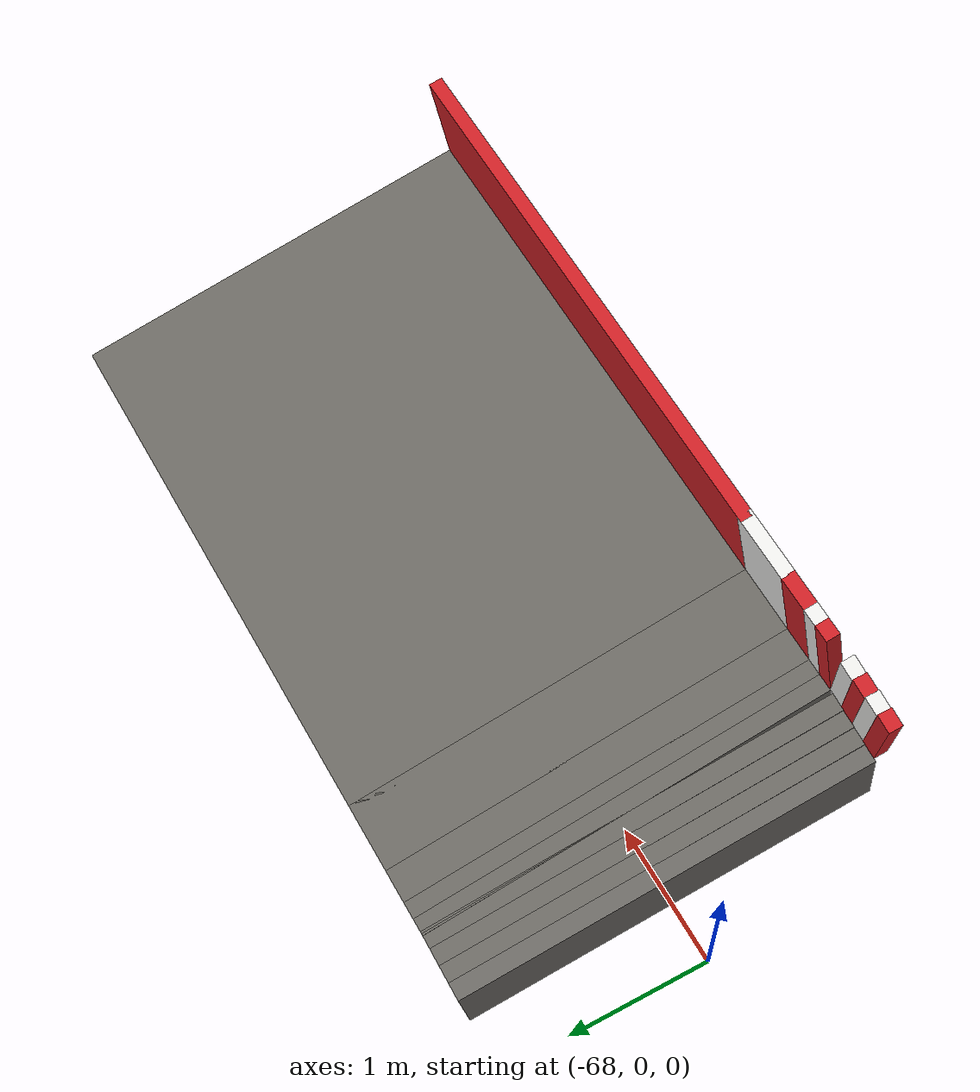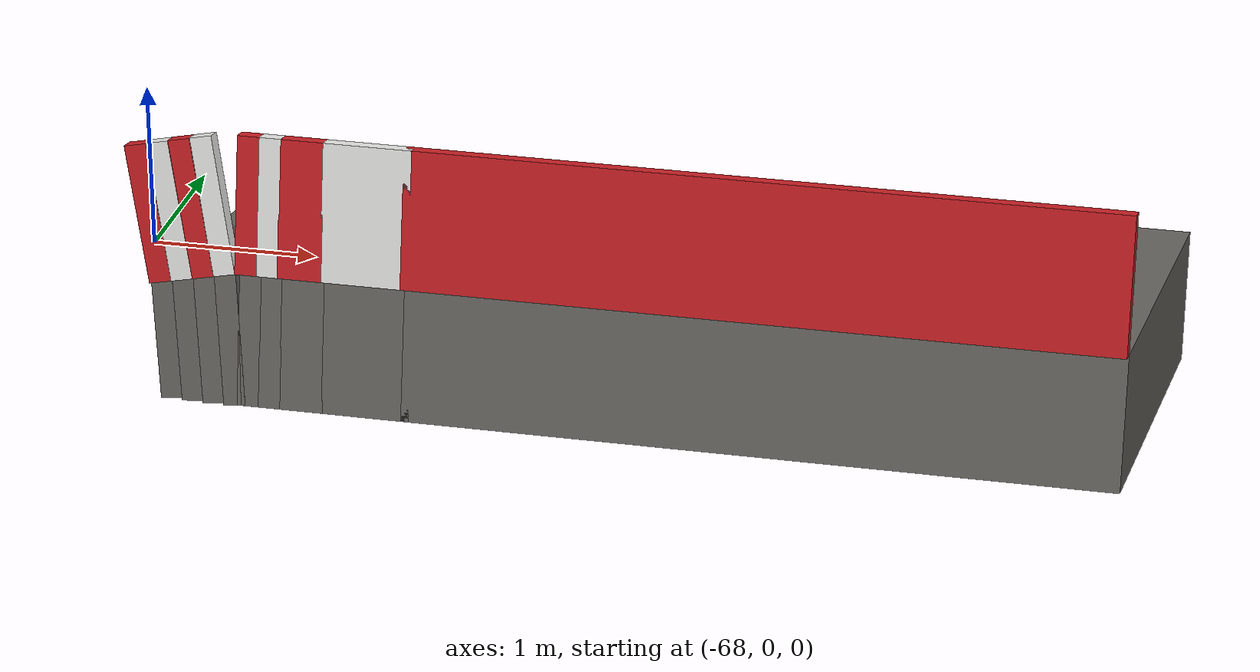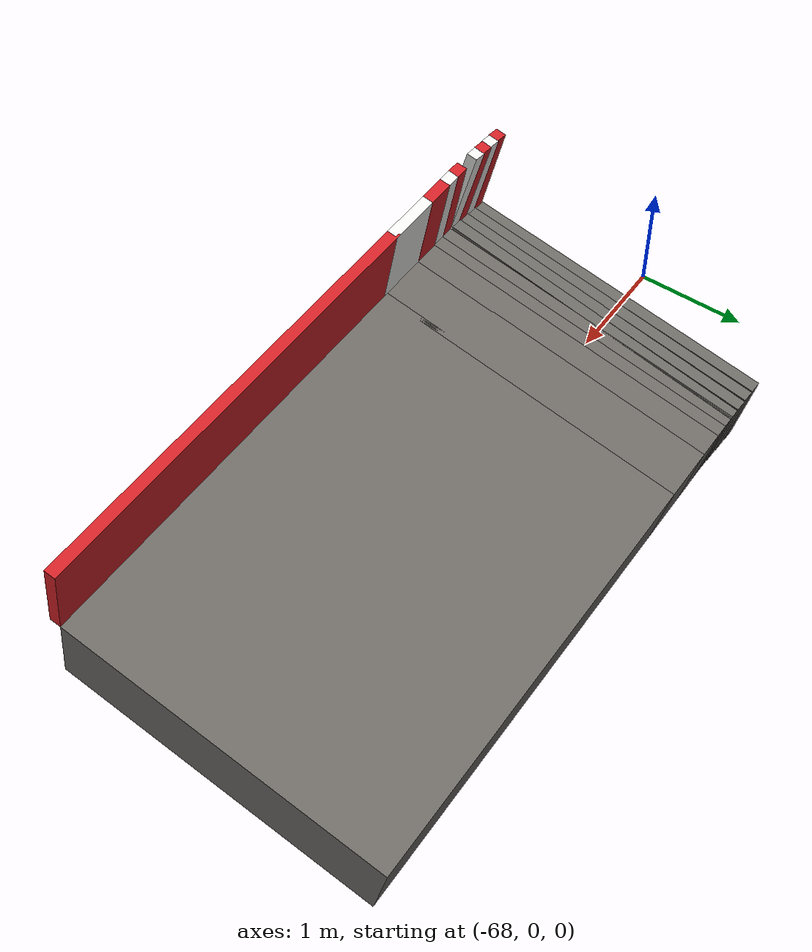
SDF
<sdf version="1.10">
 <world name="ika_parkur">
  <model name="parkur_road">
   <static>true</static>
   <link name="road_0048">
    <pose>-64 -0.077304 -0.092345 0.197396 0 3.141593</pose>
    <collision name="road_0048_col">
     <geometry><box><size>4.08 3 0.788348</size></box></geometry>
     <surface>
      <friction><ode><mu>1</mu><mu2>1</mu2></ode></friction>
      <contact><ode><kp>1000000</kp><kd>1</kd></ode></contact>
     </surface>
    </collision>
    <visual name="road_0048_vis">
     <geometry><box><size>4.08 3 0.788348</size></box></geometry>
     <material>
      <ambient>0.42 0.41 0.39 1</ambient>
      <diffuse>0.42 0.41 0.39 1</diffuse>
      <specular>0.1 0.1 0.1 1</specular>
     </material>
    </visual>
   </link>
   <link name="road_0049">
    <pose>-66.25 -0.077304 -0.092345 0.197396 0 3.141593</pose>
    <collision name="road_0049_col">
     <geometry><box><size>0.51 3 0.788348</size></box></geometry>
     <surface>
      <friction><ode><mu>1</mu><mu2>1</mu2></ode></friction>
      <contact><ode><kp>1000000</kp><kd>1</kd></ode></contact>
     </surface>
    </collision>
    <visual name="road_0049_vis">
     <geometry><box><size>0.51 3 0.788348</size></box></geometry>
     <material>
      <ambient>0.42 0.41 0.39 1</ambient>
      <diffuse>0.42 0.41 0.39 1</diffuse>
      <specular>0.1 0.1 0.1 1</specular>
     </material>
    </visual>
   </link>
   <link name="road_0050">
    <pose>-66.625 -0.077304 -0.092345 0.197396 0 3.141593</pose>
    <collision name="road_0050_col">
     <geometry><box><size>0.255 3 0.788348</size></box></geometry>
     <surface>
      <friction><ode><mu>1</mu><mu2>1</mu2></ode></friction>
      <contact><ode><kp>1000000</kp><kd>1</kd></ode></contact>
     </surface>
    </collision>
    <visual name="road_0050_vis">
     <geometry><box><size>0.255 3 0.788348</size></box></geometry>
     <material>
      <ambient>0.42 0.41 0.39 1</ambient>
      <diffuse>0.42 0.41 0.39 1</diffuse>
      <specular>0.1 0.1 0.1 1</specular>
     </material>
    </visual>
   </link>
   <link name="road_0051">
    <pose>-66.8125 -0.077304 -0.092345 0.197396 0 3.141593</pose>
    <collision name="road_0051_col">
     <geometry><box><size>0.1275 3 0.788348</size></box></geometry>
     <surface>
      <friction><ode><mu>1</mu><mu2>1</mu2></ode></friction>
      <contact><ode><kp>1000000</kp><kd>1</kd></ode></contact>
     </surface>
    </collision>
    <visual name="road_0051_vis">
     <geometry><box><size>0.1275 3 0.788348</size></box></geometry>
     <material>
      <ambient>0.42 0.41 0.39 1</ambient>
      <diffuse>0.42 0.41 0.39 1</diffuse>
      <specular>0.1 0.1 0.1 1</specular>
     </material>
    </visual>
   </link>
   <link name="road_0052">
    <pose>-66.9375 -0.077304 -0.092345 0.197396 0 3.141593</pose>
    <collision name="road_0052_col">
     <geometry><box><size>0.1275 3 0.788348</size></box></geometry>
     <surface>
      <friction><ode><mu>1</mu><mu2>1</mu2></ode></friction>
      <contact><ode><kp>1000000</kp><kd>1</kd></ode></contact>
     </surface>
    </collision>
    <visual name="road_0052_vis">
     <geometry><box><size>0.1275 3 0.788348</size></box></geometry>
     <material>
      <ambient>0.42 0.41 0.39 1</ambient>
      <diffuse>0.42 0.41 0.39 1</diffuse>
      <specular>0.1 0.1 0.1 1</specular>
     </material>
    </visual>
   </link>
   <link name="road_0053">
    <pose>-67.02478 -0.077304 -0.096629 0.197396 0.097746 3.141593</pose>
    <collision name="road_0053_col">
     <geometry><box><size>0.128112 3 0.788348</size></box></geometry>
     <surface>
      <friction><ode><mu>1</mu><mu2>1</mu2></ode></friction>
      <contact><ode><kp>1000000</kp><kd>1</kd></ode></contact>
     </surface>
    </collision>
    <visual name="road_0053_vis">
     <geometry><box><size>0.128112 3 0.788348</size></box></geometry>
     <material>
      <ambient>0.42 0.41 0.39 1</ambient>
      <diffuse>0.42 0.41 0.39 1</diffuse>
      <specular>0.1 0.1 0.1 1</specular>
     </material>
    </visual>
   </link>
   <link name="road_0054">
    <pose>-67.150879 -0.071846 -0.097671 0.189171 0.097746 3.141593</pose>
    <collision name="road_0054_col">
     <geometry><box><size>0.128112 3 0.764133</size></box></geometry>
     <surface>
      <friction><ode><mu>1</mu><mu2>1</mu2></ode></friction>
      <contact><ode><kp>1000000</kp><kd>1</kd></ode></contact>
     </surface>
    </collision>
    <visual name="road_0054_vis">
     <geometry><box><size>0.128112 3 0.764133</size></box></geometry>
     <material>
      <ambient>0.42 0.41 0.39 1</ambient>
      <diffuse>0.42 0.41 0.39 1</diffuse>
      <specular>0.1 0.1 0.1 1</specular>
     </material>
    </visual>
   </link>
   <link name="road_0055">
    <pose>-67.276987 -0.066574 -0.098632 0.180946 0.097746 3.141593</pose>
    <collision name="road_0055_col">
     <geometry><box><size>0.128112 3 0.73988</size></box></geometry>
     <surface>
      <friction><ode><mu>1</mu><mu2>1</mu2></ode></friction>
      <contact><ode><kp>1000000</kp><kd>1</kd></ode></contact>
     </surface>
    </collision>
    <visual name="road_0055_vis">
     <geometry><box><size>0.128112 3 0.73988</size></box></geometry>
     <material>
      <ambient>0.42 0.41 0.39 1</ambient>
      <diffuse>0.42 0.41 0.39 1</diffuse>
      <specular>0.1 0.1 0.1 1</specular>
     </material>
    </visual>
   </link>
   <link name="road_0056">
    <pose>-67.403102 -0.061492 -0.099515 0.172721 0.097746 3.141593</pose>
    <collision name="road_0056_col">
     <geometry><box><size>0.128112 3 0.715591</size></box></geometry>
     <surface>
      <friction><ode><mu>1</mu><mu2>1</mu2></ode></friction>
      <contact><ode><kp>1000000</kp><kd>1</kd></ode></contact>
     </surface>
    </collision>
    <visual name="road_0056_vis">
     <geometry><box><size>0.128112 3 0.715591</size></box></geometry>
     <material>
      <ambient>0.42 0.41 0.39 1</ambient>
      <diffuse>0.42 0.41 0.39 1</diffuse>
      <specular>0.1 0.1 0.1 1</specular>
     </material>
    </visual>
   </link>
  </model>
  <model name="parkur_barriers">
   <static>true</static>
   <link name="barrier_l_0048">
    <pose>-64 -1.441454 0.990386 0.197396 0 3.141593</pose>
    <collision name="barrier_l_0048_col">
     <geometry><box><size>4.08 0.1 0.8</size></box></geometry>
     <surface>
      <friction><ode><mu>0.6</mu><mu2>0.6</mu2></ode></friction>
      <contact><ode><kp>1000000</kp><kd>1</kd></ode></contact>
     </surface>
    </collision>
    <visual name="barrier_l_0048_vis">
     <geometry><box><size>4.08 0.1 0.8</size></box></geometry>
     <material>
      <ambient>0.81 0.13 0.15 1</ambient>
      <diffuse>0.81 0.13 0.15 1</diffuse>
      <specular>0.1 0.1 0.1 1</specular>
     </material>
    </visual>
   </link>
   <link name="barrier_l_0049">
    <pose>-66.25 -1.441454 0.990386 0.197396 0 3.141593</pose>
    <collision name="barrier_l_0049_col">
     <geometry><box><size>0.51 0.1 0.8</size></box></geometry>
     <surface>
      <friction><ode><mu>0.6</mu><mu2>0.6</mu2></ode></friction>
      <contact><ode><kp>1000000</kp><kd>1</kd></ode></contact>
     </surface>
    </collision>
    <visual name="barrier_l_0049_vis">
     <geometry><box><size>0.51 0.1 0.8</size></box></geometry>
     <material>
      <ambient>0.93 0.93 0.92 1</ambient>
      <diffuse>0.93 0.93 0.92 1</diffuse>
      <specular>0.1 0.1 0.1 1</specular>
     </material>
    </visual>
   </link>
   <link name="barrier_l_0050">
    <pose>-66.625 -1.441454 0.990386 0.197396 0 3.141593</pose>
    <collision name="barrier_l_0050_col">
     <geometry><box><size>0.255 0.1 0.8</size></box></geometry>
     <surface>
      <friction><ode><mu>0.6</mu><mu2>0.6</mu2></ode></friction>
      <contact><ode><kp>1000000</kp><kd>1</kd></ode></contact>
     </surface>
    </collision>
    <visual name="barrier_l_0050_vis">
     <geometry><box><size>0.255 0.1 0.8</size></box></geometry>
     <material>
      <ambient>0.81 0.13 0.15 1</ambient>
      <diffuse>0.81 0.13 0.15 1</diffuse>
      <specular>0.1 0.1 0.1 1</specular>
     </material>
    </visual>
   </link>
   <link name="barrier_l_0051">
    <pose>-66.8125 -1.441454 0.990386 0.197396 0 3.141593</pose>
    <collision name="barrier_l_0051_col">
     <geometry><box><size>0.1275 0.1 0.8</size></box></geometry>
     <surface>
      <friction><ode><mu>0.6</mu><mu2>0.6</mu2></ode></friction>
      <contact><ode><kp>1000000</kp><kd>1</kd></ode></contact>
     </surface>
    </collision>
    <visual name="barrier_l_0051_vis">
     <geometry><box><size>0.1275 0.1 0.8</size></box></geometry>
     <material>
      <ambient>0.93 0.93 0.92 1</ambient>
      <diffuse>0.93 0.93 0.92 1</diffuse>
      <specular>0.1 0.1 0.1 1</specular>
     </material>
    </visual>
   </link>
   <link name="barrier_l_0052">
    <pose>-66.9375 -1.441454 0.990386 0.197396 0 3.141593</pose>
    <collision name="barrier_l_0052_col">
     <geometry><box><size>0.1275 0.1 0.8</size></box></geometry>
     <surface>
      <friction><ode><mu>0.6</mu><mu2>0.6</mu2></ode></friction>
      <contact><ode><kp>1000000</kp><kd>1</kd></ode></contact>
     </surface>
    </collision>
    <visual name="barrier_l_0052_vis">
     <geometry><box><size>0.1275 0.1 0.8</size></box></geometry>
     <material>
      <ambient>0.81 0.13 0.15 1</ambient>
      <diffuse>0.81 0.13 0.15 1</diffuse>
      <specular>0.1 0.1 0.1 1</specular>
     </material>
    </visual>
   </link>
   <link name="barrier_l_0053">
    <pose>-67.140245 -1.444186 0.970525 0.197396 0.195576 -3.122005</pose>
    <collision name="barrier_l_0053_col">
     <geometry><box><size>0.130003 0.1 0.8</size></box></geometry>
     <surface>
      <friction><ode><mu>0.6</mu><mu2>0.6</mu2></ode></friction>
      <contact><ode><kp>1000000</kp><kd>1</kd></ode></contact>
     </surface>
    </collision>
    <visual name="barrier_l_0053_vis">
     <geometry><box><size>0.130003 0.1 0.8</size></box></geometry>
     <material>
      <ambient>0.93 0.93 0.92 1</ambient>
      <diffuse>0.93 0.93 0.92 1</diffuse>
      <specular>0.1 0.1 0.1 1</specular>
     </material>
    </visual>
   </link>
   <link name="barrier_l_0054">
    <pose>-67.265303 -1.449751 0.946355 0.189171 0.195731 -3.122829</pose>
    <collision name="barrier_l_0054_col">
     <geometry><box><size>0.130005 0.1 0.8</size></box></geometry>
     <surface>
      <friction><ode><mu>0.6</mu><mu2>0.6</mu2></ode></friction>
      <contact><ode><kp>1000000</kp><kd>1</kd></ode></contact>
     </surface>
    </collision>
    <visual name="barrier_l_0054_vis">
     <geometry><box><size>0.130005 0.1 0.8</size></box></geometry>
     <material>
      <ambient>0.81 0.13 0.15 1</ambient>
      <diffuse>0.81 0.13 0.15 1</diffuse>
      <specular>0.1 0.1 0.1 1</specular>
     </material>
    </visual>
   </link>
   <link name="barrier_l_0055">
    <pose>-67.390359 -1.455217 0.92214 0.180946 0.195879 -3.123654</pose>
    <collision name="barrier_l_0055_col">
     <geometry><box><size>0.130007 0.1 0.8</size></box></geometry>
     <surface>
      <friction><ode><mu>0.6</mu><mu2>0.6</mu2></ode></friction>
      <contact><ode><kp>1000000</kp><kd>1</kd></ode></contact>
     </surface>
    </collision>
    <visual name="barrier_l_0055_vis">
     <geometry><box><size>0.130007 0.1 0.8</size></box></geometry>
     <material>
      <ambient>0.93 0.93 0.92 1</ambient>
      <diffuse>0.93 0.93 0.92 1</diffuse>
      <specular>0.1 0.1 0.1 1</specular>
     </material>
    </visual>
   </link>
   <link name="barrier_l_0056">
    <pose>-67.515413 -1.460585 0.897881 0.172721 0.19602 -3.12448</pose>
    <collision name="barrier_l_0056_col">
     <geometry><box><size>0.130008 0.1 0.8</size></box></geometry>
     <surface>
      <friction><ode><mu>0.6</mu><mu2>0.6</mu2></ode></friction>
      <contact><ode><kp>1000000</kp><kd>1</kd></ode></contact>
     </surface>
    </collision>
    <visual name="barrier_l_0056_vis">
     <geometry><box><size>0.130008 0.1 0.8</size></box></geometry>
     <material>
      <ambient>0.81 0.13 0.15 1</ambient>
      <diffuse>0.81 0.13 0.15 1</diffuse>
      <specular>0.1 0.1 0.1 1</specular>
     </material>
    </visual>
   </link>
  </model>
 </world>
</sdf>
